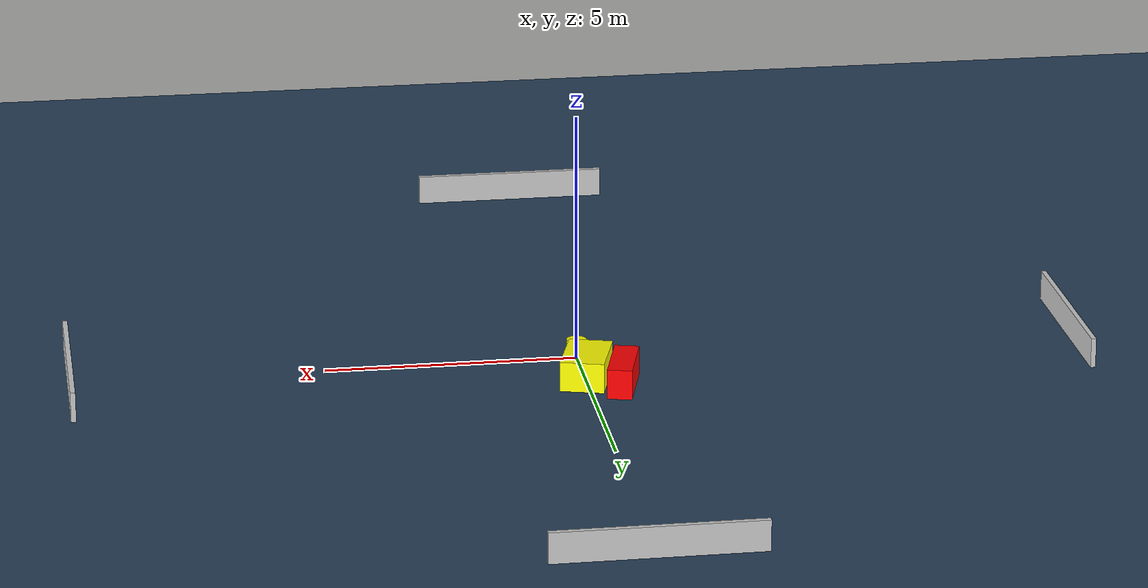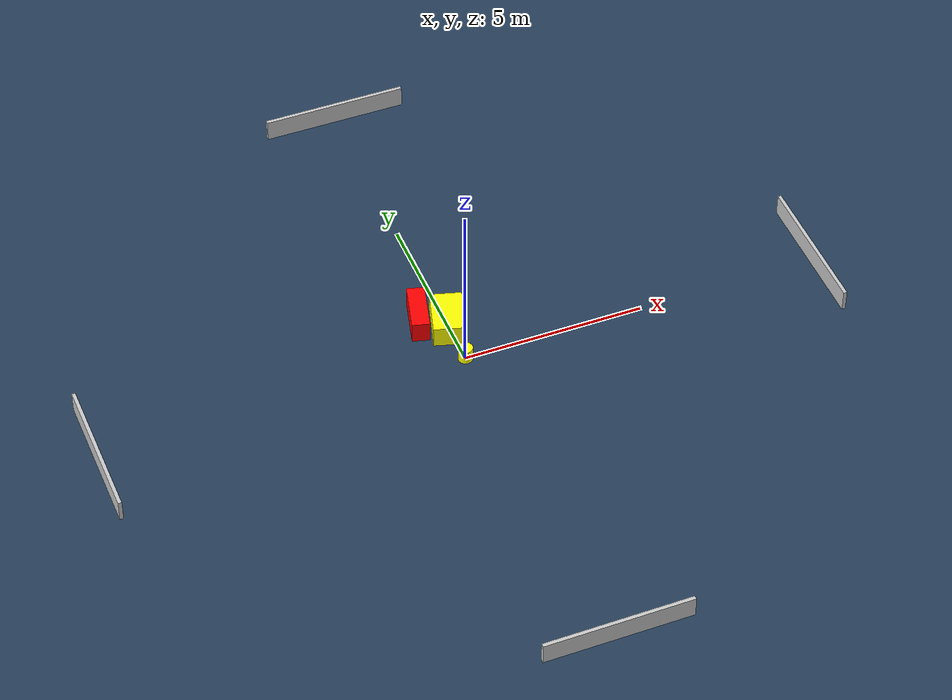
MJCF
<?xml version="1.0" ?>
<mujoco model="generated_environment">
  <option timestep="0.01" integrator="RK4" cone="elliptic"/>
  <default>
    <geom density="1"/>
  </default>
  <asset>
    <texture builtin="gradient" height="3072" name="skybox" rgb1="0.3 0.5 0.7" rgb2="0 0 0" type="skybox" width="512"/>
    <texture builtin="checker" height="300" name="groundplane" rgb1="0.2 0.3 0.4" rgb2="0.1 0.2 0.3" type="2d" width="300"/>
    <material name="groundplane" reflectance="0.2" texrepeat="5 5" texture="groundplane"/>
  </asset>
  <worldbody>
    <light dir="0 0 -1" directional="true" pos="0 0 1.5"/>
    <geom condim="3" friction="0.5 0.005 0.001" material="groundplane" name="floor" pos="0 0 0" size="0 0 0.05" type="plane"/>
    <body name="walls">
      <geom name="wall_1" condim="4" pos="-10.0 0.0 0.3" rgba="0.800000011920929 0.800000011920929 0.800000011920929 1.0" size="0.05 2.0 0.3" type="box"/>
      <geom name="wall_2" condim="4" pos="10.0 0.0 0.3" rgba="0.800000011920929 0.800000011920929 0.800000011920929 1.0" size="0.05 2.0 0.3" type="box"/>
      <geom name="wall_3" condim="4" pos="0.0 -10.0 0.3" rgba="0.800000011920929 0.800000011920929 0.800000011920929 1.0" size="2.0 0.05 0.3" type="box"/>
      <geom name="wall_4" condim="4" pos="0.0 10.0 0.3" rgba="0.800000011920929 0.800000011920929 0.800000011920929 1.0" size="2.0 0.05 0.3" type="box"/>
    </body>
    <body name="robot">
      <joint name="joint_x" type="slide" pos="0 0 0" axis="1 0 0"/>
      <joint name="joint_y" type="slide" pos="0 0 0" axis="0 1 0"/>
      <geom name="robot" type="cylinder" pos="0.0 0.0 0.2" size="0.2 0.2 0.0" mass="5.0" friction="1.0 0.005 0.0001" condim="4" rgba="1.0 1.0 0.0 1.0"/>
    </body>
    <body name="obstacle_1_movable">
      <geom name="obstacle_1_movable" condim="4" pos="-0.013173752483007005 1.239506069779805 0.3" euler="0 0 163.73056317797526" friction="0.0 0.005 0.001" rgba="1.0 1.0 0.0 1.0" size="0.4332339926673495 0.658590133269243 0.3" type="box" mass="0.1"/>
      <joint type="free"/>
    </body>
    <body name="obstacle_2_static">
      <geom name="obstacle_2_static" condim="4" pos="-0.6688622383980112 1.6887337987670932 0.3" euler="0 0 165.18678929822266" friction="0.0 0.005 0.001" rgba="1.0 0.0 0.0 1.0" size="0.2433540502848457 0.6871454384986515 0.3" type="box"/>
    </body>
  </worldbody>
  <actuator>
    <motor name="actuator_x" joint="joint_x" gear="1" ctrlrange="-1 1"/>
    <motor name="actuator_y" joint="joint_y" gear="1" ctrlrange="-1 1"/>
  </actuator>
</mujoco>
